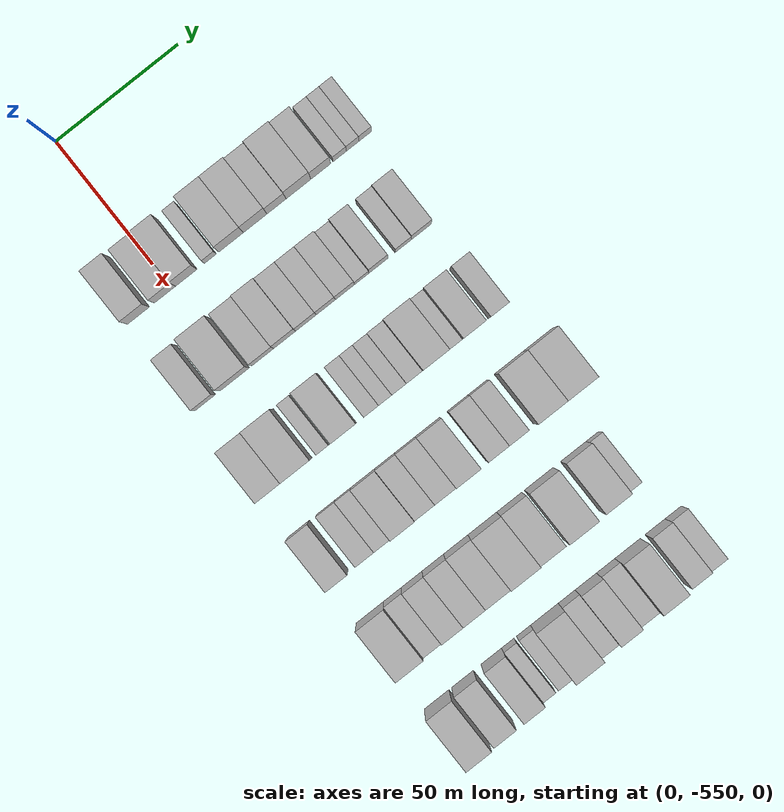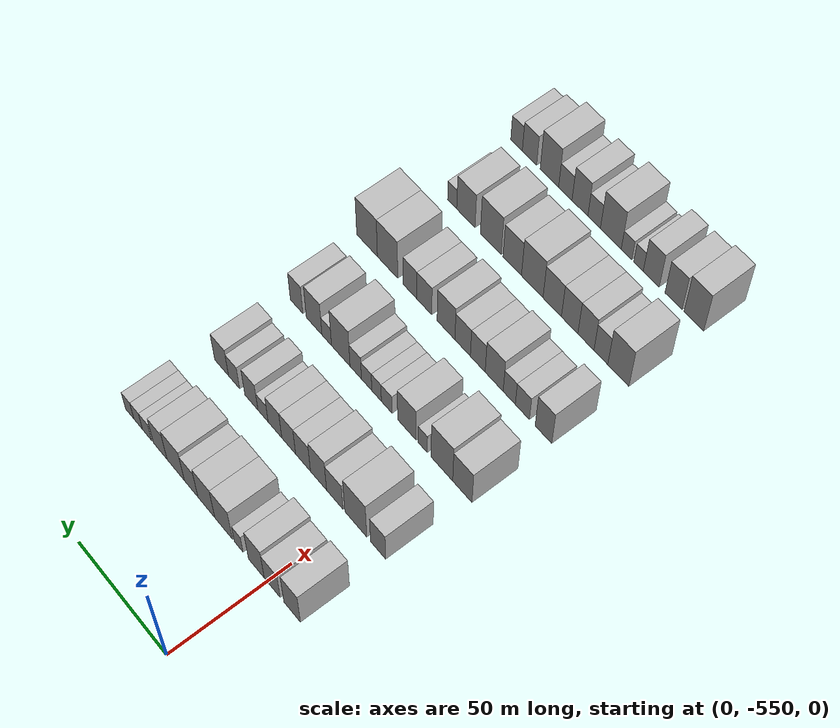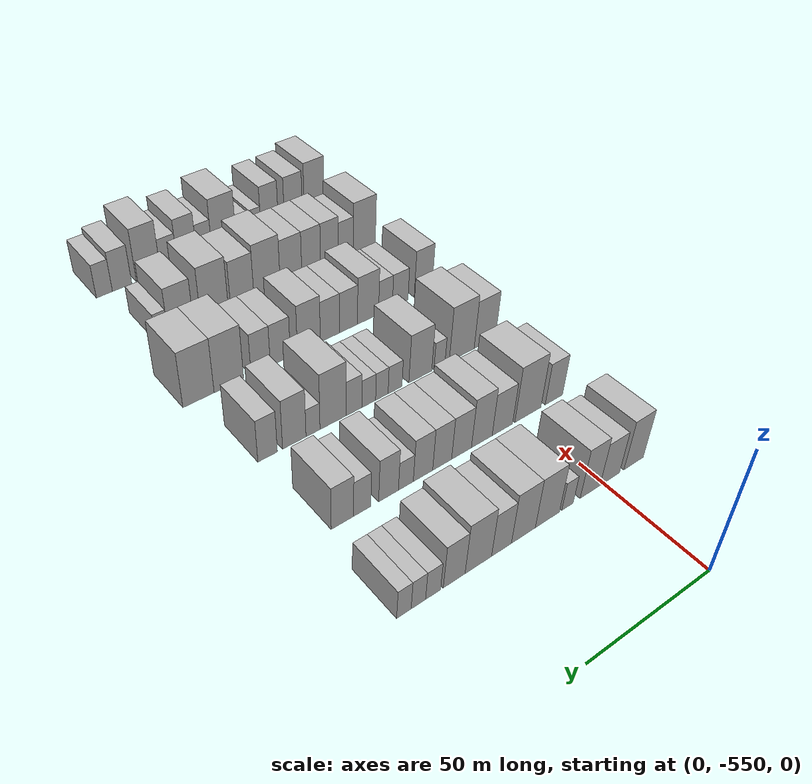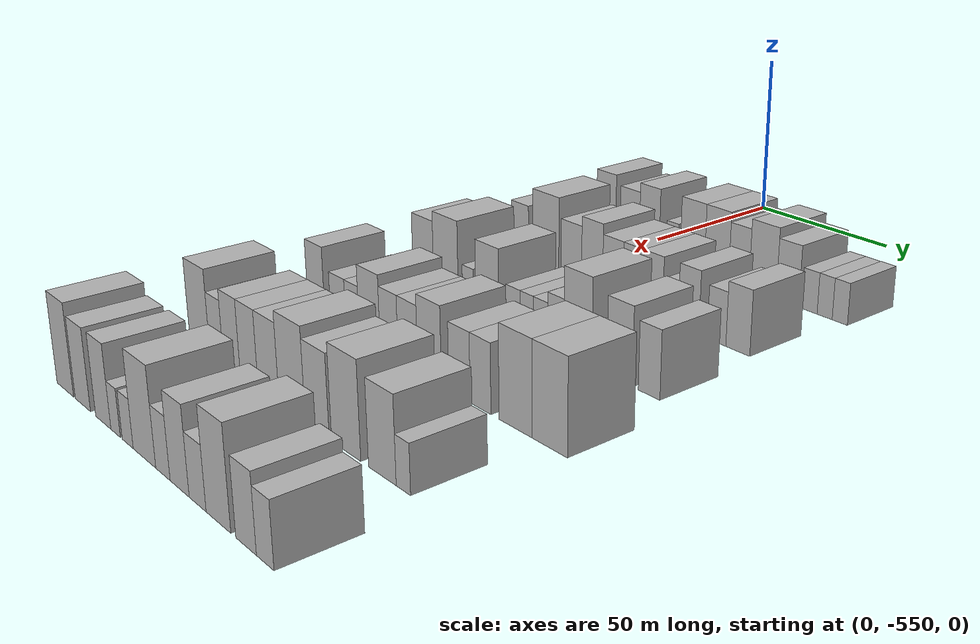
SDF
<sdf version="1.6">
 <world name="default">
  <model name="building_1">
   <static>1</static>
   <pose>50.0000 -563.5676 0 0.000000 0.000000 0.000000</pose>
   <link name="link">
    <pose>0 0 10.50 0 0 0</pose>
    <collision name="collision"><geometry><box><size>20.0000 8.8648 21.0000</size></box></geometry></collision>
    <visual name="visual">
     <cast_shadows>0</cast_shadows>
     <geometry><box><size>20.0000 8.8648 21.0000</size></box></geometry>
     <material>
      <script>
       <uri>model://HANNAS_wall/materials/scripts</uri>
       <uri>model://HANNAS_wall/materials/textures</uri>
       <name>vrc/HANNAS_wall</name>
      </script>
     </material>
    </visual>
   </link>
  </model>
  <model name="building_2">
   <static>1</static>
   <pose>50.0000 -552.7918 0 0.000000 0.000000 0.000000</pose>
   <link name="link">
    <pose>0 0 9.00 0 0 0</pose>
    <collision name="collision"><geometry><box><size>20.0000 8.6868 18.0000</size></box></geometry></collision>
    <visual name="visual">
     <cast_shadows>0</cast_shadows>
     <geometry><box><size>20.0000 8.6868 18.0000</size></box></geometry>
     <material>
      <script>
       <uri>model://HANNAS_wall/materials/scripts</uri>
       <uri>model://HANNAS_wall/materials/textures</uri>
       <name>vrc/HANNAS_wall</name>
      </script>
     </material>
    </visual>
   </link>
  </model>
  <model name="building_3">
   <static>1</static>
   <pose>50.0000 -544.1117 0 0.000000 0.000000 0.000000</pose>
   <link name="link">
    <pose>0 0 10.50 0 0 0</pose>
    <collision name="collision"><geometry><box><size>20.0000 8.6732 21.0000</size></box></geometry></collision>
    <visual name="visual">
     <cast_shadows>0</cast_shadows>
     <geometry><box><size>20.0000 8.6732 21.0000</size></box></geometry>
     <material>
      <script>
       <uri>model://HANNAS_wall/materials/scripts</uri>
       <uri>model://HANNAS_wall/materials/textures</uri>
       <name>vrc/HANNAS_wall</name>
      </script>
     </material>
    </visual>
   </link>
  </model>
  <model name="building_4">
   <static>1</static>
   <pose>50.0000 -534.3474 0 0.000000 0.000000 0.000000</pose>
   <link name="link">
    <pose>0 0 6.00 0 0 0</pose>
    <collision name="collision"><geometry><box><size>20.0000 4.8555 12.0000</size></box></geometry></collision>
    <visual name="visual">
     <cast_shadows>0</cast_shadows>
     <geometry><box><size>20.0000 4.8555 12.0000</size></box></geometry>
     <material>
      <script>
       <uri>model://HANNAS_wall/materials/scripts</uri>
       <uri>model://HANNAS_wall/materials/textures</uri>
       <name>vrc/HANNAS_wall</name>
      </script>
     </material>
    </visual>
   </link>
  </model>
  <model name="building_5">
   <static>1</static>
   <pose>50.0000 -525.9488 0 0.000000 0.000000 0.000000</pose>
   <link name="link">
    <pose>0 0 10.50 0 0 0</pose>
    <collision name="collision"><geometry><box><size>20.0000 9.9417 21.0000</size></box></geometry></collision>
    <visual name="visual">
     <cast_shadows>0</cast_shadows>
     <geometry><box><size>20.0000 9.9417 21.0000</size></box></geometry>
     <material>
      <script>
       <uri>model://HANNAS_wall/materials/scripts</uri>
       <uri>model://HANNAS_wall/materials/textures</uri>
       <name>vrc/HANNAS_wall</name>
      </script>
     </material>
    </visual>
   </link>
  </model>
  <model name="building_6">
   <static>1</static>
   <pose>50.0000 -516.1840 0 0.000000 0.000000 0.000000</pose>
   <link name="link">
    <pose>0 0 10.50 0 0 0</pose>
    <collision name="collision"><geometry><box><size>20.0000 9.5878 21.0000</size></box></geometry></collision>
    <visual name="visual">
     <cast_shadows>0</cast_shadows>
     <geometry><box><size>20.0000 9.5878 21.0000</size></box></geometry>
     <material>
      <script>
       <uri>model://HANNAS_wall/materials/scripts</uri>
       <uri>model://HANNAS_wall/materials/textures</uri>
       <name>vrc/HANNAS_wall</name>
      </script>
     </material>
    </visual>
   </link>
  </model>
  <model name="building_7">
   <static>1</static>
   <pose>50.0000 -507.5107 0 0.000000 0.000000 0.000000</pose>
   <link name="link">
    <pose>0 0 9.00 0 0 0</pose>
    <collision name="collision"><geometry><box><size>20.0000 7.7590 18.0000</size></box></geometry></collision>
    <visual name="visual">
     <cast_shadows>0</cast_shadows>
     <geometry><box><size>20.0000 7.7590 18.0000</size></box></geometry>
     <material>
      <script>
       <uri>model://HANNAS_wall/materials/scripts</uri>
       <uri>model://HANNAS_wall/materials/textures</uri>
       <name>vrc/HANNAS_wall</name>
      </script>
     </material>
    </visual>
   </link>
  </model>
  <model name="building_8">
   <static>1</static>
   <pose>50.0000 -498.5991 0 0.000000 0.000000 0.000000</pose>
   <link name="link">
    <pose>0 0 10.50 0 0 0</pose>
    <collision name="collision"><geometry><box><size>20.0000 10.0640 21.0000</size></box></geometry></collision>
    <visual name="visual">
     <cast_shadows>0</cast_shadows>
     <geometry><box><size>20.0000 10.0640 21.0000</size></box></geometry>
     <material>
      <script>
       <uri>model://HANNAS_wall/materials/scripts</uri>
       <uri>model://HANNAS_wall/materials/textures</uri>
       <name>vrc/HANNAS_wall</name>
      </script>
     </material>
    </visual>
   </link>
  </model>
  <model name="building_9">
   <static>1</static>
   <pose>50.0000 -489.5370 0 0.000000 0.000000 0.000000</pose>
   <link name="link">
    <pose>0 0 9.00 0 0 0</pose>
    <collision name="collision"><geometry><box><size>20.0000 8.0602 18.0000</size></box></geometry></collision>
    <visual name="visual">
     <cast_shadows>0</cast_shadows>
     <geometry><box><size>20.0000 8.0602 18.0000</size></box></geometry>
     <material>
      <script>
       <uri>model://HANNAS_wall/materials/scripts</uri>
       <uri>model://HANNAS_wall/materials/textures</uri>
       <name>vrc/HANNAS_wall</name>
      </script>
     </material>
    </visual>
   </link>
  </model>
  <model name="building_10">
   <static>1</static>
   <pose>50.0000 -481.8069 0 0.000000 0.000000 0.000000</pose>
   <link name="link">
    <pose>0 0 6.00 0 0 0</pose>
    <collision name="collision"><geometry><box><size>20.0000 5.4000 12.0000</size></box></geometry></collision>
    <visual name="visual">
     <cast_shadows>0</cast_shadows>
     <geometry><box><size>20.0000 5.4000 12.0000</size></box></geometry>
     <material>
      <script>
       <uri>model://HANNAS_wall/materials/scripts</uri>
       <uri>model://HANNAS_wall/materials/textures</uri>
       <name>vrc/HANNAS_wall</name>
      </script>
     </material>
    </visual>
   </link>
  </model>
  <model name="building_11">
   <static>1</static>
   <pose>50.0000 -476.5526 0 0.000000 0.000000 0.000000</pose>
   <link name="link">
    <pose>0 0 6.00 0 0 0</pose>
    <collision name="collision"><geometry><box><size>20.0000 5.1086 12.0000</size></box></geometry></collision>
    <visual name="visual">
     <cast_shadows>0</cast_shadows>
     <geometry><box><size>20.0000 5.1086 12.0000</size></box></geometry>
     <material>
      <script>
       <uri>model://HANNAS_wall/materials/scripts</uri>
       <uri>model://HANNAS_wall/materials/textures</uri>
       <name>vrc/HANNAS_wall</name>
      </script>
     </material>
    </visual>
   </link>
  </model>
  <model name="building_12">
   <static>1</static>
   <pose>50.0000 -471.4669 0 0.000000 0.000000 0.000000</pose>
   <link name="link">
    <pose>0 0 6.00 0 0 0</pose>
    <collision name="collision"><geometry><box><size>20.0000 5.0627 12.0000</size></box></geometry></collision>
    <visual name="visual">
     <cast_shadows>0</cast_shadows>
     <geometry><box><size>20.0000 5.0627 12.0000</size></box></geometry>
     <material>
      <script>
       <uri>model://HANNAS_wall/materials/scripts</uri>
       <uri>model://HANNAS_wall/materials/textures</uri>
       <name>vrc/HANNAS_wall</name>
      </script>
     </material>
    </visual>
   </link>
  </model>
  <model name="building_118">
   <static>1</static>
   <pose>85.0000 -563.9687 0 0.000000 0.000000 0.000000</pose>
   <link name="link">
    <pose>0 0 9.00 0 0 0</pose>
    <collision name="collision"><geometry><box><size>20.0000 8.0627 18.0000</size></box></geometry></collision>
    <visual name="visual">
     <cast_shadows>0</cast_shadows>
     <geometry><box><size>20.0000 8.0627 18.0000</size></box></geometry>
     <material>
      <script>
       <uri>model://HANNAS_wall/materials/scripts</uri>
       <uri>model://HANNAS_wall/materials/textures</uri>
       <name>vrc/HANNAS_wall</name>
      </script>
     </material>
    </visual>
   </link>
  </model>
  <model name="building_119">
   <static>1</static>
   <pose>85.0000 -552.0263 0 0.000000 0.000000 0.000000</pose>
   <link name="link">
    <pose>0 0 12.00 0 0 0</pose>
    <collision name="collision"><geometry><box><size>20.0000 11.8220 24.0000</size></box></geometry></collision>
    <visual name="visual">
     <cast_shadows>0</cast_shadows>
     <geometry><box><size>20.0000 11.8220 24.0000</size></box></geometry>
     <material>
      <script>
       <uri>model://HANNAS_wall/materials/scripts</uri>
       <uri>model://HANNAS_wall/materials/textures</uri>
       <name>vrc/HANNAS_wall</name>
      </script>
     </material>
    </visual>
   </link>
  </model>
  <model name="building_120">
   <static>1</static>
   <pose>85.0000 -540.6332 0 0.000000 0.000000 0.000000</pose>
   <link name="link">
    <pose>0 0 9.00 0 0 0</pose>
    <collision name="collision"><geometry><box><size>20.0000 8.9642 18.0000</size></box></geometry></collision>
    <visual name="visual">
     <cast_shadows>0</cast_shadows>
     <geometry><box><size>20.0000 8.9642 18.0000</size></box></geometry>
     <material>
      <script>
       <uri>model://HANNAS_wall/materials/scripts</uri>
       <uri>model://HANNAS_wall/materials/textures</uri>
       <name>vrc/HANNAS_wall</name>
      </script>
     </material>
    </visual>
   </link>
  </model>
  <model name="building_121">
   <static>1</static>
   <pose>85.0000 -531.7110 0 0.000000 0.000000 0.000000</pose>
   <link name="link">
    <pose>0 0 10.50 0 0 0</pose>
    <collision name="collision"><geometry><box><size>20.0000 8.8802 21.0000</size></box></geometry></collision>
    <visual name="visual">
     <cast_shadows>0</cast_shadows>
     <geometry><box><size>20.0000 8.8802 21.0000</size></box></geometry>
     <material>
      <script>
       <uri>model://HANNAS_wall/materials/scripts</uri>
       <uri>model://HANNAS_wall/materials/textures</uri>
       <name>vrc/HANNAS_wall</name>
      </script>
     </material>
    </visual>
   </link>
  </model>
  <model name="building_122">
   <static>1</static>
   <pose>85.0000 -523.1276 0 0.000000 0.000000 0.000000</pose>
   <link name="link">
    <pose>0 0 9.00 0 0 0</pose>
    <collision name="collision"><geometry><box><size>20.0000 8.2866 18.0000</size></box></geometry></collision>
    <visual name="visual">
     <cast_shadows>0</cast_shadows>
     <geometry><box><size>20.0000 8.2866 18.0000</size></box></geometry>
     <material>
      <script>
       <uri>model://HANNAS_wall/materials/scripts</uri>
       <uri>model://HANNAS_wall/materials/textures</uri>
       <name>vrc/HANNAS_wall</name>
      </script>
     </material>
    </visual>
   </link>
  </model>
  <model name="building_123">
   <static>1</static>
   <pose>85.0000 -515.1037 0 0.000000 0.000000 0.000000</pose>
   <link name="link">
    <pose>0 0 9.00 0 0 0</pose>
    <collision name="collision"><geometry><box><size>20.0000 7.7613 18.0000</size></box></geometry></collision>
    <visual name="visual">
     <cast_shadows>0</cast_shadows>
     <geometry><box><size>20.0000 7.7613 18.0000</size></box></geometry>
     <material>
      <script>
       <uri>model://HANNAS_wall/materials/scripts</uri>
       <uri>model://HANNAS_wall/materials/textures</uri>
       <name>vrc/HANNAS_wall</name>
      </script>
     </material>
    </visual>
   </link>
  </model>
  <model name="building_124">
   <static>1</static>
   <pose>85.0000 -507.3473 0 0.000000 0.000000 0.000000</pose>
   <link name="link">
    <pose>0 0 9.00 0 0 0</pose>
    <collision name="collision"><geometry><box><size>20.0000 7.7513 18.0000</size></box></geometry></collision>
    <visual name="visual">
     <cast_shadows>0</cast_shadows>
     <geometry><box><size>20.0000 7.7513 18.0000</size></box></geometry>
     <material>
      <script>
       <uri>model://HANNAS_wall/materials/scripts</uri>
       <uri>model://HANNAS_wall/materials/textures</uri>
       <name>vrc/HANNAS_wall</name>
      </script>
     </material>
    </visual>
   </link>
  </model>
  <model name="building_125">
   <static>1</static>
   <pose>85.0000 -500.5483 0 0.000000 0.000000 0.000000</pose>
   <link name="link">
    <pose>0 0 6.00 0 0 0</pose>
    <collision name="collision"><geometry><box><size>20.0000 5.8468 12.0000</size></box></geometry></collision>
    <visual name="visual">
     <cast_shadows>0</cast_shadows>
     <geometry><box><size>20.0000 5.8468 12.0000</size></box></geometry>
     <material>
      <script>
       <uri>model://HANNAS_wall/materials/scripts</uri>
       <uri>model://HANNAS_wall/materials/textures</uri>
       <name>vrc/HANNAS_wall</name>
      </script>
     </material>
    </visual>
   </link>
  </model>
  <model name="building_126">
   <static>1</static>
   <pose>85.0000 -493.8244 0 0.000000 0.000000 0.000000</pose>
   <link name="link">
    <pose>0 0 9.00 0 0 0</pose>
    <collision name="collision"><geometry><box><size>20.0000 7.6009 18.0000</size></box></geometry></collision>
    <visual name="visual">
     <cast_shadows>0</cast_shadows>
     <geometry><box><size>20.0000 7.6009 18.0000</size></box></geometry>
     <material>
      <script>
       <uri>model://HANNAS_wall/materials/scripts</uri>
       <uri>model://HANNAS_wall/materials/textures</uri>
       <name>vrc/HANNAS_wall</name>
      </script>
     </material>
    </visual>
   </link>
  </model>
  <model name="building_127">
   <static>1</static>
   <pose>85.0000 -483.7882 0 0.000000 0.000000 0.000000</pose>
   <link name="link">
    <pose>0 0 7.50 0 0 0</pose>
    <collision name="collision"><geometry><box><size>20.0000 6.4716 15.0000</size></box></geometry></collision>
    <visual name="visual">
     <cast_shadows>0</cast_shadows>
     <geometry><box><size>20.0000 6.4716 15.0000</size></box></geometry>
     <material>
      <script>
       <uri>model://HANNAS_wall/materials/scripts</uri>
       <uri>model://HANNAS_wall/materials/textures</uri>
       <name>vrc/HANNAS_wall</name>
      </script>
     </material>
    </visual>
   </link>
  </model>
  <model name="building_128">
   <static>1</static>
   <pose>85.0000 -476.4890 0 0.000000 0.000000 0.000000</pose>
   <link name="link">
    <pose>0 0 9.00 0 0 0</pose>
    <collision name="collision"><geometry><box><size>20.0000 8.1269 18.0000</size></box></geometry></collision>
    <visual name="visual">
     <cast_shadows>0</cast_shadows>
     <geometry><box><size>20.0000 8.1269 18.0000</size></box></geometry>
     <material>
      <script>
       <uri>model://HANNAS_wall/materials/scripts</uri>
       <uri>model://HANNAS_wall/materials/textures</uri>
       <name>vrc/HANNAS_wall</name>
      </script>
     </material>
    </visual>
   </link>
  </model>
  <model name="building_244">
   <static>1</static>
   <pose>120.0000 -564.9295 0 0.000000 0.000000 0.000000</pose>
   <link name="link">
    <pose>0 0 10.50 0 0 0</pose>
    <collision name="collision"><geometry><box><size>20.0000 10.1411 21.0000</size></box></geometry></collision>
    <visual name="visual">
     <cast_shadows>0</cast_shadows>
     <geometry><box><size>20.0000 10.1411 21.0000</size></box></geometry>
     <material>
      <script>
       <uri>model://HANNAS_wall/materials/scripts</uri>
       <uri>model://HANNAS_wall/materials/textures</uri>
       <name>vrc/HANNAS_wall</name>
      </script>
     </material>
    </visual>
   </link>
  </model>
  <model name="building_245">
   <static>1</static>
   <pose>120.0000 -554.0807 0 0.000000 0.000000 0.000000</pose>
   <link name="link">
    <pose>0 0 12.00 0 0 0</pose>
    <collision name="collision"><geometry><box><size>20.0000 11.5565 24.0000</size></box></geometry></collision>
    <visual name="visual">
     <cast_shadows>0</cast_shadows>
     <geometry><box><size>20.0000 11.5565 24.0000</size></box></geometry>
     <material>
      <script>
       <uri>model://HANNAS_wall/materials/scripts</uri>
       <uri>model://HANNAS_wall/materials/textures</uri>
       <name>vrc/HANNAS_wall</name>
      </script>
     </material>
    </visual>
   </link>
  </model>
  <model name="building_246">
   <static>1</static>
   <pose>120.0000 -543.8328 0 0.000000 0.000000 0.000000</pose>
   <link name="link">
    <pose>0 0 6.00 0 0 0</pose>
    <collision name="collision"><geometry><box><size>20.0000 4.9394 12.0000</size></box></geometry></collision>
    <visual name="visual">
     <cast_shadows>0</cast_shadows>
     <geometry><box><size>20.0000 4.9394 12.0000</size></box></geometry>
     <material>
      <script>
       <uri>model://HANNAS_wall/materials/scripts</uri>
       <uri>model://HANNAS_wall/materials/textures</uri>
       <name>vrc/HANNAS_wall</name>
      </script>
     </material>
    </visual>
   </link>
  </model>
  <model name="building_247">
   <static>1</static>
   <pose>120.0000 -535.3041 0 0.000000 0.000000 0.000000</pose>
   <link name="link">
    <pose>0 0 10.50 0 0 0</pose>
    <collision name="collision"><geometry><box><size>20.0000 10.1180 21.0000</size></box></geometry></collision>
    <visual name="visual">
     <cast_shadows>0</cast_shadows>
     <geometry><box><size>20.0000 10.1180 21.0000</size></box></geometry>
     <material>
      <script>
       <uri>model://HANNAS_wall/materials/scripts</uri>
       <uri>model://HANNAS_wall/materials/textures</uri>
       <name>vrc/HANNAS_wall</name>
      </script>
     </material>
    </visual>
   </link>
  </model>
  <model name="building_248">
   <static>1</static>
   <pose>120.0000 -524.2537 0 0.000000 0.000000 0.000000</pose>
   <link name="link">
    <pose>0 0 6.00 0 0 0</pose>
    <collision name="collision"><geometry><box><size>20.0000 5.9829 12.0000</size></box></geometry></collision>
    <visual name="visual">
     <cast_shadows>0</cast_shadows>
     <geometry><box><size>20.0000 5.9829 12.0000</size></box></geometry>
     <material>
      <script>
       <uri>model://HANNAS_wall/materials/scripts</uri>
       <uri>model://HANNAS_wall/materials/textures</uri>
       <name>vrc/HANNAS_wall</name>
      </script>
     </material>
    </visual>
   </link>
  </model>
  <model name="building_249">
   <static>1</static>
   <pose>120.0000 -518.6209 0 0.000000 0.000000 0.000000</pose>
   <link name="link">
    <pose>0 0 6.00 0 0 0</pose>
    <collision name="collision"><geometry><box><size>20.0000 5.2826 12.0000</size></box></geometry></collision>
    <visual name="visual">
     <cast_shadows>0</cast_shadows>
     <geometry><box><size>20.0000 5.2826 12.0000</size></box></geometry>
     <material>
      <script>
       <uri>model://HANNAS_wall/materials/scripts</uri>
       <uri>model://HANNAS_wall/materials/textures</uri>
       <name>vrc/HANNAS_wall</name>
      </script>
     </material>
    </visual>
   </link>
  </model>
  <model name="building_250">
   <static>1</static>
   <pose>120.0000 -513.0861 0 0.000000 0.000000 0.000000</pose>
   <link name="link">
    <pose>0 0 6.00 0 0 0</pose>
    <collision name="collision"><geometry><box><size>20.0000 5.7871 12.0000</size></box></geometry></collision>
    <visual name="visual">
     <cast_shadows>0</cast_shadows>
     <geometry><box><size>20.0000 5.7871 12.0000</size></box></geometry>
     <material>
      <script>
       <uri>model://HANNAS_wall/materials/scripts</uri>
       <uri>model://HANNAS_wall/materials/textures</uri>
       <name>vrc/HANNAS_wall</name>
      </script>
     </material>
    </visual>
   </link>
  </model>
  <model name="building_251">
   <static>1</static>
   <pose>120.0000 -506.9855 0 0.000000 0.000000 0.000000</pose>
   <link name="link">
    <pose>0 0 7.50 0 0 0</pose>
    <collision name="collision"><geometry><box><size>20.0000 6.4141 15.0000</size></box></geometry></collision>
    <visual name="visual">
     <cast_shadows>0</cast_shadows>
     <geometry><box><size>20.0000 6.4141 15.0000</size></box></geometry>
     <material>
      <script>
       <uri>model://HANNAS_wall/materials/scripts</uri>
       <uri>model://HANNAS_wall/materials/textures</uri>
       <name>vrc/HANNAS_wall</name>
      </script>
     </material>
    </visual>
   </link>
  </model>
  <model name="building_252">
   <static>1</static>
   <pose>120.0000 -498.5179 0 0.000000 0.000000 0.000000</pose>
   <link name="link">
    <pose>0 0 12.00 0 0 0</pose>
    <collision name="collision"><geometry><box><size>20.0000 10.5211 24.0000</size></box></geometry></collision>
    <visual name="visual">
     <cast_shadows>0</cast_shadows>
     <geometry><box><size>20.0000 10.5211 24.0000</size></box></geometry>
     <material>
      <script>
       <uri>model://HANNAS_wall/materials/scripts</uri>
       <uri>model://HANNAS_wall/materials/textures</uri>
       <name>vrc/HANNAS_wall</name>
      </script>
     </material>
    </visual>
   </link>
  </model>
  <model name="building_253">
   <static>1</static>
   <pose>120.0000 -490.5164 0 0.000000 0.000000 0.000000</pose>
   <link name="link">
    <pose>0 0 6.00 0 0 0</pose>
    <collision name="collision"><geometry><box><size>20.0000 5.4819 12.0000</size></box></geometry></collision>
    <visual name="visual">
     <cast_shadows>0</cast_shadows>
     <geometry><box><size>20.0000 5.4819 12.0000</size></box></geometry>
     <material>
      <script>
       <uri>model://HANNAS_wall/materials/scripts</uri>
       <uri>model://HANNAS_wall/materials/textures</uri>
       <name>vrc/HANNAS_wall</name>
      </script>
     </material>
    </visual>
   </link>
  </model>
  <model name="building_254">
   <static>1</static>
   <pose>120.0000 -483.2668 0 0.000000 0.000000 0.000000</pose>
   <link name="link">
    <pose>0 0 10.50 0 0 0</pose>
    <collision name="collision"><geometry><box><size>20.0000 9.0173 21.0000</size></box></geometry></collision>
    <visual name="visual">
     <cast_shadows>0</cast_shadows>
     <geometry><box><size>20.0000 9.0173 21.0000</size></box></geometry>
     <material>
      <script>
       <uri>model://HANNAS_wall/materials/scripts</uri>
       <uri>model://HANNAS_wall/materials/textures</uri>
       <name>vrc/HANNAS_wall</name>
      </script>
     </material>
    </visual>
   </link>
  </model>
  <model name="building_255">
   <static>1</static>
   <pose>120.0000 -473.1097 0 0.000000 0.000000 0.000000</pose>
   <link name="link">
    <pose>0 0 9.00 0 0 0</pose>
    <collision name="collision"><geometry><box><size>20.0000 7.2967 18.0000</size></box></geometry></collision>
    <visual name="visual">
     <cast_shadows>0</cast_shadows>
     <geometry><box><size>20.0000 7.2967 18.0000</size></box></geometry>
     <material>
      <script>
       <uri>model://HANNAS_wall/materials/scripts</uri>
       <uri>model://HANNAS_wall/materials/textures</uri>
       <name>vrc/HANNAS_wall</name>
      </script>
     </material>
    </visual>
   </link>
  </model>
  <model name="building_364">
   <static>1</static>
   <pose>155.0000 -565.6582 0 0.000000 0.000000 0.000000</pose>
   <link name="link">
    <pose>0 0 10.50 0 0 0</pose>
    <collision name="collision"><geometry><box><size>20.0000 8.6837 21.0000</size></box></geometry></collision>
    <visual name="visual">
     <cast_shadows>0</cast_shadows>
     <geometry><box><size>20.0000 8.6837 21.0000</size></box></geometry>
     <material>
      <script>
       <uri>model://HANNAS_wall/materials/scripts</uri>
       <uri>model://HANNAS_wall/materials/textures</uri>
       <name>vrc/HANNAS_wall</name>
      </script>
     </material>
    </visual>
   </link>
  </model>
  <model name="building_365">
   <static>1</static>
   <pose>155.0000 -554.5986 0 0.000000 0.000000 0.000000</pose>
   <link name="link">
    <pose>0 0 7.50 0 0 0</pose>
    <collision name="collision"><geometry><box><size>20.0000 7.4356 15.0000</size></box></geometry></collision>
    <visual name="visual">
     <cast_shadows>0</cast_shadows>
     <geometry><box><size>20.0000 7.4356 15.0000</size></box></geometry>
     <material>
      <script>
       <uri>model://HANNAS_wall/materials/scripts</uri>
       <uri>model://HANNAS_wall/materials/textures</uri>
       <name>vrc/HANNAS_wall</name>
      </script>
     </material>
    </visual>
   </link>
  </model>
  <model name="building_366">
   <static>1</static>
   <pose>155.0000 -547.6558 0 0.000000 0.000000 0.000000</pose>
   <link name="link">
    <pose>0 0 7.50 0 0 0</pose>
    <collision name="collision"><geometry><box><size>20.0000 6.4499 15.0000</size></box></geometry></collision>
    <visual name="visual">
     <cast_shadows>0</cast_shadows>
     <geometry><box><size>20.0000 6.4499 15.0000</size></box></geometry>
     <material>
      <script>
       <uri>model://HANNAS_wall/materials/scripts</uri>
       <uri>model://HANNAS_wall/materials/textures</uri>
       <name>vrc/HANNAS_wall</name>
      </script>
     </material>
    </visual>
   </link>
  </model>
  <model name="building_367">
   <static>1</static>
   <pose>155.0000 -539.5903 0 0.000000 0.000000 0.000000</pose>
   <link name="link">
    <pose>0 0 10.50 0 0 0</pose>
    <collision name="collision"><geometry><box><size>20.0000 9.6811 21.0000</size></box></geometry></collision>
    <visual name="visual">
     <cast_shadows>0</cast_shadows>
     <geometry><box><size>20.0000 9.6811 21.0000</size></box></geometry>
     <material>
      <script>
       <uri>model://HANNAS_wall/materials/scripts</uri>
       <uri>model://HANNAS_wall/materials/textures</uri>
       <name>vrc/HANNAS_wall</name>
      </script>
     </material>
    </visual>
   </link>
  </model>
  <model name="building_368">
   <static>1</static>
   <pose>155.0000 -530.7339 0 0.000000 0.000000 0.000000</pose>
   <link name="link">
    <pose>0 0 9.00 0 0 0</pose>
    <collision name="collision"><geometry><box><size>20.0000 8.0317 18.0000</size></box></geometry></collision>
    <visual name="visual">
     <cast_shadows>0</cast_shadows>
     <geometry><box><size>20.0000 8.0317 18.0000</size></box></geometry>
     <material>
      <script>
       <uri>model://HANNAS_wall/materials/scripts</uri>
       <uri>model://HANNAS_wall/materials/textures</uri>
       <name>vrc/HANNAS_wall</name>
      </script>
     </material>
    </visual>
   </link>
  </model>
  <model name="building_369">
   <static>1</static>
   <pose>155.0000 -522.4951 0 0.000000 0.000000 0.000000</pose>
   <link name="link">
    <pose>0 0 9.00 0 0 0</pose>
    <collision name="collision"><geometry><box><size>20.0000 8.4460 18.0000</size></box></geometry></collision>
    <visual name="visual">
     <cast_shadows>0</cast_shadows>
     <geometry><box><size>20.0000 8.4460 18.0000</size></box></geometry>
     <material>
      <script>
       <uri>model://HANNAS_wall/materials/scripts</uri>
       <uri>model://HANNAS_wall/materials/textures</uri>
       <name>vrc/HANNAS_wall</name>
      </script>
     </material>
    </visual>
   </link>
  </model>
  <model name="building_370">
   <static>1</static>
   <pose>155.0000 -513.3518 0 0.000000 0.000000 0.000000</pose>
   <link name="link">
    <pose>0 0 10.50 0 0 0</pose>
    <collision name="collision"><geometry><box><size>20.0000 9.8404 21.0000</size></box></geometry></collision>
    <visual name="visual">
     <cast_shadows>0</cast_shadows>
     <geometry><box><size>20.0000 9.8404 21.0000</size></box></geometry>
     <material>
      <script>
       <uri>model://HANNAS_wall/materials/scripts</uri>
       <uri>model://HANNAS_wall/materials/textures</uri>
       <name>vrc/HANNAS_wall</name>
      </script>
     </material>
    </visual>
   </link>
  </model>
  <model name="building_371">
   <static>1</static>
   <pose>155.0000 -501.2736 0 0.000000 0.000000 0.000000</pose>
   <link name="link">
    <pose>0 0 9.00 0 0 0</pose>
    <collision name="collision"><geometry><box><size>20.0000 8.3161 18.0000</size></box></geometry></collision>
    <visual name="visual">
     <cast_shadows>0</cast_shadows>
     <geometry><box><size>20.0000 8.3161 18.0000</size></box></geometry>
     <material>
      <script>
       <uri>model://HANNAS_wall/materials/scripts</uri>
       <uri>model://HANNAS_wall/materials/textures</uri>
       <name>vrc/HANNAS_wall</name>
      </script>
     </material>
    </visual>
   </link>
  </model>
  <model name="building_372">
   <static>1</static>
   <pose>155.0000 -493.1824 0 0.000000 0.000000 0.000000</pose>
   <link name="link">
    <pose>0 0 9.00 0 0 0</pose>
    <collision name="collision"><geometry><box><size>20.0000 7.8664 18.0000</size></box></geometry></collision>
    <visual name="visual">
     <cast_shadows>0</cast_shadows>
     <geometry><box><size>20.0000 7.8664 18.0000</size></box></geometry>
     <material>
      <script>
       <uri>model://HANNAS_wall/materials/scripts</uri>
       <uri>model://HANNAS_wall/materials/textures</uri>
       <name>vrc/HANNAS_wall</name>
      </script>
     </material>
    </visual>
   </link>
  </model>
  <model name="building_373">
   <static>1</static>
   <pose>155.0000 -480.4093 0 0.000000 0.000000 0.000000</pose>
   <link name="link">
    <pose>0 0 12.00 0 0 0</pose>
    <collision name="collision"><geometry><box><size>20.0000 11.6796 24.0000</size></box></geometry></collision>
    <visual name="visual">
     <cast_shadows>0</cast_shadows>
     <geometry><box><size>20.0000 11.6796 24.0000</size></box></geometry>
     <material>
      <script>
       <uri>model://HANNAS_wall/materials/scripts</uri>
       <uri>model://HANNAS_wall/materials/textures</uri>
       <name>vrc/HANNAS_wall</name>
      </script>
     </material>
    </visual>
   </link>
  </model>
  <model name="building_374">
   <static>1</static>
   <pose>155.0000 -468.5773 0 0.000000 0.000000 0.000000</pose>
   <link name="link">
    <pose>0 0 12.00 0 0 0</pose>
    <collision name="collision"><geometry><box><size>20.0000 11.9845 24.0000</size></box></geometry></collision>
    <visual name="visual">
     <cast_shadows>0</cast_shadows>
     <geometry><box><size>20.0000 11.9845 24.0000</size></box></geometry>
     <material>
      <script>
       <uri>model://HANNAS_wall/materials/scripts</uri>
       <uri>model://HANNAS_wall/materials/textures</uri>
       <name>vrc/HANNAS_wall</name>
      </script>
     </material>
    </visual>
   </link>
  </model>
  <model name="building_489">
   <static>1</static>
   <pose>190.0000 -564.5099 0 0.000000 0.000000 0.000000</pose>
   <link name="link">
    <pose>0 0 12.00 0 0 0</pose>
    <collision name="collision"><geometry><box><size>20.0000 10.9801 24.0000</size></box></geometry></collision>
    <visual name="visual">
     <cast_shadows>0</cast_shadows>
     <geometry><box><size>20.0000 10.9801 24.0000</size></box></geometry>
     <material>
      <script>
       <uri>model://HANNAS_wall/materials/scripts</uri>
       <uri>model://HANNAS_wall/materials/textures</uri>
       <name>vrc/HANNAS_wall</name>
      </script>
     </material>
    </visual>
   </link>
  </model>
  <model name="building_490">
   <static>1</static>
   <pose>190.0000 -555.4022 0 0.000000 0.000000 0.000000</pose>
   <link name="link">
    <pose>0 0 9.00 0 0 0</pose>
    <collision name="collision"><geometry><box><size>20.0000 7.2353 18.0000</size></box></geometry></collision>
    <visual name="visual">
     <cast_shadows>0</cast_shadows>
     <geometry><box><size>20.0000 7.2353 18.0000</size></box></geometry>
     <material>
      <script>
       <uri>model://HANNAS_wall/materials/scripts</uri>
       <uri>model://HANNAS_wall/materials/textures</uri>
       <name>vrc/HANNAS_wall</name>
      </script>
     </material>
    </visual>
   </link>
  </model>
  <model name="building_491">
   <static>1</static>
   <pose>190.0000 -547.5353 0 0.000000 0.000000 0.000000</pose>
   <link name="link">
    <pose>0 0 10.50 0 0 0</pose>
    <collision name="collision"><geometry><box><size>20.0000 8.4985 21.0000</size></box></geometry></collision>
    <visual name="visual">
     <cast_shadows>0</cast_shadows>
     <geometry><box><size>20.0000 8.4985 21.0000</size></box></geometry>
     <material>
      <script>
       <uri>model://HANNAS_wall/materials/scripts</uri>
       <uri>model://HANNAS_wall/materials/textures</uri>
       <name>vrc/HANNAS_wall</name>
      </script>
     </material>
    </visual>
   </link>
  </model>
  <model name="building_492">
   <static>1</static>
   <pose>190.0000 -538.8944 0 0.000000 0.000000 0.000000</pose>
   <link name="link">
    <pose>0 0 10.50 0 0 0</pose>
    <collision name="collision"><geometry><box><size>20.0000 8.7832 21.0000</size></box></geometry></collision>
    <visual name="visual">
     <cast_shadows>0</cast_shadows>
     <geometry><box><size>20.0000 8.7832 21.0000</size></box></geometry>
     <material>
      <script>
       <uri>model://HANNAS_wall/materials/scripts</uri>
       <uri>model://HANNAS_wall/materials/textures</uri>
       <name>vrc/HANNAS_wall</name>
      </script>
     </material>
    </visual>
   </link>
  </model>
  <model name="building_493">
   <static>1</static>
   <pose>190.0000 -529.5477 0 0.000000 0.000000 0.000000</pose>
   <link name="link">
    <pose>0 0 10.50 0 0 0</pose>
    <collision name="collision"><geometry><box><size>20.0000 9.9103 21.0000</size></box></geometry></collision>
    <visual name="visual">
     <cast_shadows>0</cast_shadows>
     <geometry><box><size>20.0000 9.9103 21.0000</size></box></geometry>
     <material>
      <script>
       <uri>model://HANNAS_wall/materials/scripts</uri>
       <uri>model://HANNAS_wall/materials/textures</uri>
       <name>vrc/HANNAS_wall</name>
      </script>
     </material>
    </visual>
   </link>
  </model>
  <model name="building_494">
   <static>1</static>
   <pose>190.0000 -518.7074 0 0.000000 0.000000 0.000000</pose>
   <link name="link">
    <pose>0 0 12.00 0 0 0</pose>
    <collision name="collision"><geometry><box><size>20.0000 11.7703 24.0000</size></box></geometry></collision>
    <visual name="visual">
     <cast_shadows>0</cast_shadows>
     <geometry><box><size>20.0000 11.7703 24.0000</size></box></geometry>
     <material>
      <script>
       <uri>model://HANNAS_wall/materials/scripts</uri>
       <uri>model://HANNAS_wall/materials/textures</uri>
       <name>vrc/HANNAS_wall</name>
      </script>
     </material>
    </visual>
   </link>
  </model>
  <model name="building_495">
   <static>1</static>
   <pose>190.0000 -507.7349 0 0.000000 0.000000 0.000000</pose>
   <link name="link">
    <pose>0 0 10.50 0 0 0</pose>
    <collision name="collision"><geometry><box><size>20.0000 10.1746 21.0000</size></box></geometry></collision>
    <visual name="visual">
     <cast_shadows>0</cast_shadows>
     <geometry><box><size>20.0000 10.1746 21.0000</size></box></geometry>
     <material>
      <script>
       <uri>model://HANNAS_wall/materials/scripts</uri>
       <uri>model://HANNAS_wall/materials/textures</uri>
       <name>vrc/HANNAS_wall</name>
      </script>
     </material>
    </visual>
   </link>
  </model>
  <model name="building_496">
   <static>1</static>
   <pose>190.0000 -495.8002 0 0.000000 0.000000 0.000000</pose>
   <link name="link">
    <pose>0 0 12.00 0 0 0</pose>
    <collision name="collision"><geometry><box><size>20.0000 11.6949 24.0000</size></box></geometry></collision>
    <visual name="visual">
     <cast_shadows>0</cast_shadows>
     <geometry><box><size>20.0000 11.6949 24.0000</size></box></geometry>
     <material>
      <script>
       <uri>model://HANNAS_wall/materials/scripts</uri>
       <uri>model://HANNAS_wall/materials/textures</uri>
       <name>vrc/HANNAS_wall</name>
      </script>
     </material>
    </visual>
   </link>
  </model>
  <model name="building_497">
   <static>1</static>
   <pose>190.0000 -481.7617 0 0.000000 0.000000 0.000000</pose>
   <link name="link">
    <pose>0 0 10.50 0 0 0</pose>
    <collision name="collision"><geometry><box><size>20.0000 10.3819 21.0000</size></box></geometry></collision>
    <visual name="visual">
     <cast_shadows>0</cast_shadows>
     <geometry><box><size>20.0000 10.3819 21.0000</size></box></geometry>
     <material>
      <script>
       <uri>model://HANNAS_wall/materials/scripts</uri>
       <uri>model://HANNAS_wall/materials/textures</uri>
       <name>vrc/HANNAS_wall</name>
      </script>
     </material>
    </visual>
   </link>
  </model>
  <model name="building_498">
   <static>1</static>
   <pose>190.0000 -473.9721 0 0.000000 0.000000 0.000000</pose>
   <link name="link">
    <pose>0 0 6.00 0 0 0</pose>
    <collision name="collision"><geometry><box><size>20.0000 5.1974 12.0000</size></box></geometry></collision>
    <visual name="visual">
     <cast_shadows>0</cast_shadows>
     <geometry><box><size>20.0000 5.1974 12.0000</size></box></geometry>
     <material>
      <script>
       <uri>model://HANNAS_wall/materials/scripts</uri>
       <uri>model://HANNAS_wall/materials/textures</uri>
       <name>vrc/HANNAS_wall</name>
      </script>
     </material>
    </visual>
   </link>
  </model>
  <model name="building_620">
   <static>1</static>
   <pose>225.0000 -564.9493 0 0.000000 0.000000 0.000000</pose>
   <link name="link">
    <pose>0 0 12.00 0 0 0</pose>
    <collision name="collision"><geometry><box><size>20.0000 10.1013 24.0000</size></box></geometry></collision>
    <visual name="visual">
     <cast_shadows>0</cast_shadows>
     <geometry><box><size>20.0000 10.1013 24.0000</size></box></geometry>
     <material>
      <script>
       <uri>model://HANNAS_wall/materials/scripts</uri>
       <uri>model://HANNAS_wall/materials/textures</uri>
       <name>vrc/HANNAS_wall</name>
      </script>
     </material>
    </visual>
   </link>
  </model>
  <model name="building_621">
   <static>1</static>
   <pose>225.0000 -554.4402 0 0.000000 0.000000 0.000000</pose>
   <link name="link">
    <pose>0 0 10.50 0 0 0</pose>
    <collision name="collision"><geometry><box><size>20.0000 8.9168 21.0000</size></box></geometry></collision>
    <visual name="visual">
     <cast_shadows>0</cast_shadows>
     <geometry><box><size>20.0000 8.9168 21.0000</size></box></geometry>
     <material>
      <script>
       <uri>model://HANNAS_wall/materials/scripts</uri>
       <uri>model://HANNAS_wall/materials/textures</uri>
       <name>vrc/HANNAS_wall</name>
      </script>
     </material>
    </visual>
   </link>
  </model>
  <model name="building_622">
   <static>1</static>
   <pose>225.0000 -542.7605 0 0.000000 0.000000 0.000000</pose>
   <link name="link">
    <pose>0 0 10.50 0 0 0</pose>
    <collision name="collision"><geometry><box><size>20.0000 8.4426 21.0000</size></box></geometry></collision>
    <visual name="visual">
     <cast_shadows>0</cast_shadows>
     <geometry><box><size>20.0000 8.4426 21.0000</size></box></geometry>
     <material>
      <script>
       <uri>model://HANNAS_wall/materials/scripts</uri>
       <uri>model://HANNAS_wall/materials/textures</uri>
       <name>vrc/HANNAS_wall</name>
      </script>
     </material>
    </visual>
   </link>
  </model>
  <model name="building_623">
   <static>1</static>
   <pose>225.0000 -536.0095 0 0.000000 0.000000 0.000000</pose>
   <link name="link">
    <pose>0 0 6.00 0 0 0</pose>
    <collision name="collision"><geometry><box><size>20.0000 5.0595 12.0000</size></box></geometry></collision>
    <visual name="visual">
     <cast_shadows>0</cast_shadows>
     <geometry><box><size>20.0000 5.0595 12.0000</size></box></geometry>
     <material>
      <script>
       <uri>model://HANNAS_wall/materials/scripts</uri>
       <uri>model://HANNAS_wall/materials/textures</uri>
       <name>vrc/HANNAS_wall</name>
      </script>
     </material>
    </visual>
   </link>
  </model>
  <model name="building_624">
   <static>1</static>
   <pose>225.0000 -529.6287 0 0.000000 0.000000 0.000000</pose>
   <link name="link">
    <pose>0 0 6.00 0 0 0</pose>
    <collision name="collision"><geometry><box><size>20.0000 5.7021 12.0000</size></box></geometry></collision>
    <visual name="visual">
     <cast_shadows>0</cast_shadows>
     <geometry><box><size>20.0000 5.7021 12.0000</size></box></geometry>
     <material>
      <script>
       <uri>model://HANNAS_wall/materials/scripts</uri>
       <uri>model://HANNAS_wall/materials/textures</uri>
       <name>vrc/HANNAS_wall</name>
      </script>
     </material>
    </visual>
   </link>
  </model>
  <model name="building_625">
   <static>1</static>
   <pose>225.0000 -521.1429 0 0.000000 0.000000 0.000000</pose>
   <link name="link">
    <pose>0 0 12.00 0 0 0</pose>
    <collision name="collision"><geometry><box><size>20.0000 11.2695 24.0000</size></box></geometry></collision>
    <visual name="visual">
     <cast_shadows>0</cast_shadows>
     <geometry><box><size>20.0000 11.2695 24.0000</size></box></geometry>
     <material>
      <script>
       <uri>model://HANNAS_wall/materials/scripts</uri>
       <uri>model://HANNAS_wall/materials/textures</uri>
       <name>vrc/HANNAS_wall</name>
      </script>
     </material>
    </visual>
   </link>
  </model>
  <model name="building_626">
   <static>1</static>
   <pose>225.0000 -512.0828 0 0.000000 0.000000 0.000000</pose>
   <link name="link">
    <pose>0 0 7.50 0 0 0</pose>
    <collision name="collision"><geometry><box><size>20.0000 6.8507 15.0000</size></box></geometry></collision>
    <visual name="visual">
     <cast_shadows>0</cast_shadows>
     <geometry><box><size>20.0000 6.8507 15.0000</size></box></geometry>
     <material>
      <script>
       <uri>model://HANNAS_wall/materials/scripts</uri>
       <uri>model://HANNAS_wall/materials/textures</uri>
       <name>vrc/HANNAS_wall</name>
      </script>
     </material>
    </visual>
   </link>
  </model>
  <model name="building_627">
   <static>1</static>
   <pose>225.0000 -504.2965 0 0.000000 0.000000 0.000000</pose>
   <link name="link">
    <pose>0 0 10.50 0 0 0</pose>
    <collision name="collision"><geometry><box><size>20.0000 8.7220 21.0000</size></box></geometry></collision>
    <visual name="visual">
     <cast_shadows>0</cast_shadows>
     <geometry><box><size>20.0000 8.7220 21.0000</size></box></geometry>
     <material>
      <script>
       <uri>model://HANNAS_wall/materials/scripts</uri>
       <uri>model://HANNAS_wall/materials/textures</uri>
       <name>vrc/HANNAS_wall</name>
      </script>
     </material>
    </visual>
   </link>
  </model>
  <model name="building_628">
   <static>1</static>
   <pose>225.0000 -496.2125 0 0.000000 0.000000 0.000000</pose>
   <link name="link">
    <pose>0 0 7.50 0 0 0</pose>
    <collision name="collision"><geometry><box><size>20.0000 7.4460 15.0000</size></box></geometry></collision>
    <visual name="visual">
     <cast_shadows>0</cast_shadows>
     <geometry><box><size>20.0000 7.4460 15.0000</size></box></geometry>
     <material>
      <script>
       <uri>model://HANNAS_wall/materials/scripts</uri>
       <uri>model://HANNAS_wall/materials/textures</uri>
       <name>vrc/HANNAS_wall</name>
      </script>
     </material>
    </visual>
   </link>
  </model>
  <model name="building_629">
   <static>1</static>
   <pose>225.0000 -487.3245 0 0.000000 0.000000 0.000000</pose>
   <link name="link">
    <pose>0 0 12.00 0 0 0</pose>
    <collision name="collision"><geometry><box><size>20.0000 10.3299 24.0000</size></box></geometry></collision>
    <visual name="visual">
     <cast_shadows>0</cast_shadows>
     <geometry><box><size>20.0000 10.3299 24.0000</size></box></geometry>
     <material>
      <script>
       <uri>model://HANNAS_wall/materials/scripts</uri>
       <uri>model://HANNAS_wall/materials/textures</uri>
       <name>vrc/HANNAS_wall</name>
      </script>
     </material>
    </visual>
   </link>
  </model>
  <model name="building_630">
   <static>1</static>
   <pose>225.0000 -476.1021 0 0.000000 0.000000 0.000000</pose>
   <link name="link">
    <pose>0 0 9.00 0 0 0</pose>
    <collision name="collision"><geometry><box><size>20.0000 8.1149 18.0000</size></box></geometry></collision>
    <visual name="visual">
     <cast_shadows>0</cast_shadows>
     <geometry><box><size>20.0000 8.1149 18.0000</size></box></geometry>
     <material>
      <script>
       <uri>model://HANNAS_wall/materials/scripts</uri>
       <uri>model://HANNAS_wall/materials/textures</uri>
       <name>vrc/HANNAS_wall</name>
      </script>
     </material>
    </visual>
   </link>
  </model>
  <model name="building_631">
   <static>1</static>
   <pose>225.0000 -468.7339 0 0.000000 0.000000 0.000000</pose>
   <link name="link">
    <pose>0 0 7.50 0 0 0</pose>
    <collision name="collision"><geometry><box><size>20.0000 6.6216 15.0000</size></box></geometry></collision>
    <visual name="visual">
     <cast_shadows>0</cast_shadows>
     <geometry><box><size>20.0000 6.6216 15.0000</size></box></geometry>
     <material>
      <script>
       <uri>model://HANNAS_wall/materials/scripts</uri>
       <uri>model://HANNAS_wall/materials/textures</uri>
       <name>vrc/HANNAS_wall</name>
      </script>
     </material>
    </visual>
   </link>
  </model>
 </world>
</sdf>
